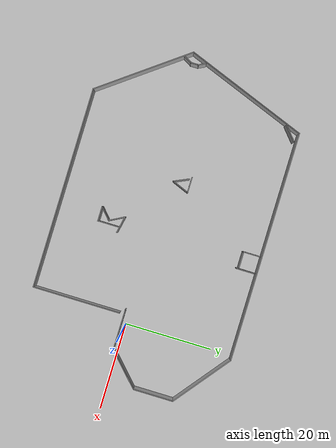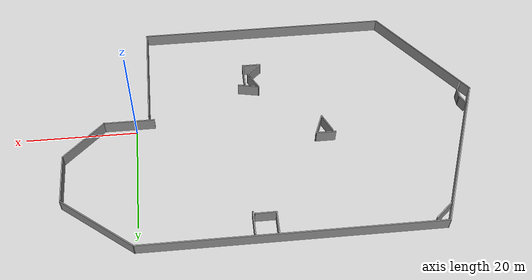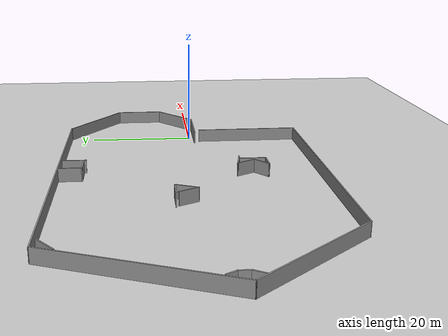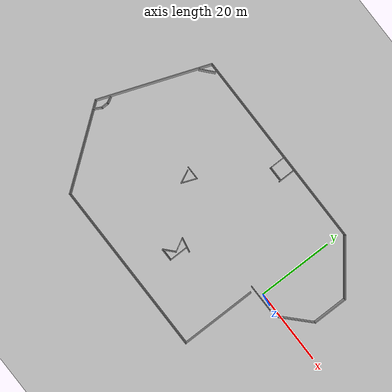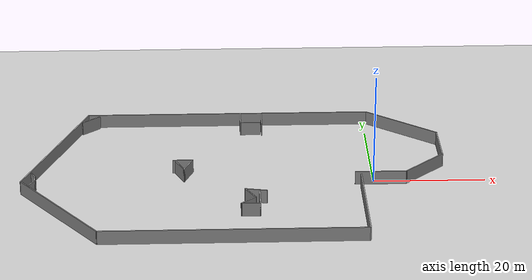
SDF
<?xml version="1.0" ?>
<sdf version="1.4">
  <world name="default">

    <!-- A global light source -->
    <include>
      <uri>model://sun</uri>
    </include>

    <!-- A ground plane -->
    <include>
      <uri>model://ground_plane</uri>
    </include>
  <include>
      <uri>model://coveragespace</uri>
    </include>

  </world>
</sdf>

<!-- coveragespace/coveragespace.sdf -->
<sdf version='1.4'>
  <model name='coveragespace'>
    <link name='Wall_0'>
      <collision name='Wall_0_Collision'>
        <geometry>
          <box>
            <size>9.23 0.2 2.5</size>
          </box>
        </geometry>
        <pose>0 0 1.25 0 -0 0</pose>
      </collision>
      <visual name='Wall_0_Visual'>
        <pose>0 0 1.25 0 -0 0</pose>
        <geometry>
          <box>
            <size>9.23 0.2 2.5</size>
          </box>
        </geometry>
        <material>
          <script>
            <uri>file://media/materials/scripts/gazebo.material</uri>
            <name>Gazebo/Grey</name>
          </script>
        </material>
      </visual>
      <velocity_decay>
        <linear>0</linear>
        <angular>0</angular>
      </velocity_decay>
      <pose>1.245 -0.93 0 0 -0 0</pose>
    </link>
    <link name='Wall_1'>
      <collision name='Wall_1_Collision'>
        <geometry>
          <box>
            <size>10.096 0.2 2.5</size>
          </box>
        </geometry>
        <pose>0 0 1.25 0 -0 0</pose>
      </collision>
      <visual name='Wall_1_Visual'>
        <pose>0 0 1.25 0 -0 0</pose>
        <geometry>
          <box>
            <size>10.096 0.2 2.5</size>
          </box>
        </geometry>
        <material>
          <script>
            <uri>file://media/materials/scripts/gazebo.material</uri>
            <name>Gazebo/Grey</name>
          </script>
        </material>
      </visual>
      <velocity_decay>
        <linear>0</linear>
        <angular>0</angular>
      </velocity_decay>
      <pose>9.34764 2.4776 0 0 -0 0.759666</pose>
    </link>
    <link name='Wall_10'>
      <collision name='Wall_10_Collision'>
        <geometry>
          <box>
            <size>3.6848 0.2 2.5</size>
          </box>
        </geometry>
        <pose>0 0 1.25 0 -0 0</pose>
      </collision>
      <visual name='Wall_10_Visual'>
        <pose>0 0 1.25 0 -0 0</pose>
        <geometry>
          <box>
            <size>3.6848 0.2 2.5</size>
          </box>
        </geometry>
        <material>
          <script>
            <uri>file://media/materials/scripts/gazebo.material</uri>
            <name>Gazebo/Grey</name>
          </script>
        </material>
      </visual>
      <velocity_decay>
        <linear>0</linear>
        <angular>0</angular>
      </velocity_decay>
      <pose>-33.9585 4.71682 0 0 -0 0</pose>
    </link>
    <link name='Wall_11'>
      <collision name='Wall_11_Collision'>
        <geometry>
          <box>
            <size>4.22134 0.2 2.5</size>
          </box>
        </geometry>
        <pose>0 0 1.25 0 -0 0</pose>
      </collision>
      <visual name='Wall_11_Visual'>
        <pose>0 0 1.25 0 -0 0</pose>
        <geometry>
          <box>
            <size>4.22134 0.2 2.5</size>
          </box>
        </geometry>
        <material>
          <script>
            <uri>file://media/materials/scripts/gazebo.material</uri>
            <name>Gazebo/Grey</name>
          </script>
        </material>
      </visual>
      <velocity_decay>
        <linear>0</linear>
        <angular>0</angular>
      </velocity_decay>
      <pose>-32.9628 2.84997 0 0 0 -1.9513</pose>
    </link>
    <link name='Wall_12'>
      <collision name='Wall_12_Collision'>
        <geometry>
          <box>
            <size>3.76391 0.2 2.5</size>
          </box>
        </geometry>
        <pose>0 0 1.25 0 -0 0</pose>
      </collision>
      <visual name='Wall_12_Visual'>
        <pose>0 0 1.25 0 -0 0</pose>
        <geometry>
          <box>
            <size>3.76391 0.2 2.5</size>
          </box>
        </geometry>
        <material>
          <script>
            <uri>file://media/materials/scripts/gazebo.material</uri>
            <name>Gazebo/Grey</name>
          </script>
        </material>
      </visual>
      <velocity_decay>
        <linear>0</linear>
        <angular>0</angular>
      </velocity_decay>
      <pose>-34.4563 2.60105 0 0 -0 2.0032</pose>
    </link>
    <link name='Wall_14'>
      <collision name='Wall_14_Collision'>
        <geometry>
          <box>
            <size>4.00766 0.2 2.5</size>
          </box>
        </geometry>
        <pose>0 0 1.25 0 -0 0</pose>
      </collision>
      <visual name='Wall_14_Visual'>
        <pose>0 0 1.25 0 -0 0</pose>
        <geometry>
          <box>
            <size>4.00766 0.2 2.5</size>
          </box>
        </geometry>
        <material>
          <script>
            <uri>file://media/materials/scripts/gazebo.material</uri>
            <name>Gazebo/Grey</name>
          </script>
        </material>
      </visual>
      <velocity_decay>
        <linear>0</linear>
        <angular>0</angular>
      </velocity_decay>
      <pose>-21.1394 -7.35553 0 0 -0 2.9442</pose>
    </link>
    <link name='Wall_15'>
      <collision name='Wall_15_Collision'>
        <geometry>
          <box>
            <size>3.87518 0.2 2.5</size>
          </box>
        </geometry>
        <pose>0 0 1.25 0 -0 0</pose>
      </collision>
      <visual name='Wall_15_Visual'>
        <pose>0 0 1.25 0 -0 0</pose>
        <geometry>
          <box>
            <size>3.87518 0.2 2.5</size>
          </box>
        </geometry>
        <material>
          <script>
            <uri>file://media/materials/scripts/gazebo.material</uri>
            <name>Gazebo/Grey</name>
          </script>
        </material>
      </visual>
      <velocity_decay>
        <linear>0</linear>
        <angular>0</angular>
      </velocity_decay>
      <pose>-22.135 -8.60011 0 0 0 -1.07685</pose>
    </link>
    <link name='Wall_16'>
      <collision name='Wall_16_Collision'>
        <geometry>
          <box>
            <size>3.5488 0.2 2.5</size>
          </box>
        </geometry>
        <pose>0 0 1.25 0 -0 0</pose>
      </collision>
      <visual name='Wall_16_Visual'>
        <pose>0 0 1.25 0 -0 0</pose>
        <geometry>
          <box>
            <size>3.5488 0.2 2.5</size>
          </box>
        </geometry>
        <material>
          <script>
            <uri>file://media/materials/scripts/gazebo.material</uri>
            <name>Gazebo/Grey</name>
          </script>
        </material>
      </visual>
      <velocity_decay>
        <linear>0</linear>
        <angular>0</angular>
      </velocity_decay>
      <pose>-22.5084 -11.3382 0 0 0 -2.40878</pose>
    </link>
    <link name='Wall_17'>
      <collision name='Wall_17_Collision'>
        <geometry>
          <box>
            <size>3.43589 0.2 2.5</size>
          </box>
        </geometry>
        <pose>0 0 1.25 0 -0 0</pose>
      </collision>
      <visual name='Wall_17_Visual'>
        <pose>0 0 1.25 0 -0 0</pose>
        <geometry>
          <box>
            <size>3.43589 0.2 2.5</size>
          </box>
        </geometry>
        <material>
          <script>
            <uri>file://media/materials/scripts/gazebo.material</uri>
            <name>Gazebo/Grey</name>
          </script>
        </material>
      </visual>
      <velocity_decay>
        <linear>0</linear>
        <angular>0</angular>
      </velocity_decay>
      <pose>-22.135 -12.4583 0 0 -0 0</pose>
    </link>
    <link name='Wall_18'>
      <collision name='Wall_18_Collision'>
        <geometry>
          <box>
            <size>4.92938 0.2 2.5</size>
          </box>
        </geometry>
        <pose>0 0 1.25 0 -0 0</pose>
      </collision>
      <visual name='Wall_18_Visual'>
        <pose>0 0 1.25 0 -0 0</pose>
        <geometry>
          <box>
            <size>4.92938 0.2 2.5</size>
          </box>
        </geometry>
        <material>
          <script>
            <uri>file://media/materials/scripts/gazebo.material</uri>
            <name>Gazebo/Grey</name>
          </script>
        </material>
      </visual>
      <velocity_decay>
        <linear>0</linear>
        <angular>0</angular>
      </velocity_decay>
      <pose>-20.5171 -10.0936 0 0 -0 1.5708</pose>
    </link>
    <link name='Wall_2'>
      <collision name='Wall_2_Collision'>
        <geometry>
          <box>
            <size>9.32444 0.2 2.5</size>
          </box>
        </geometry>
        <pose>0 0 1.25 0 -0 0</pose>
      </collision>
      <visual name='Wall_2_Visual'>
        <pose>0 0 1.25 0 -0 0</pose>
        <geometry>
          <box>
            <size>9.32444 0.2 2.5</size>
          </box>
        </geometry>
        <material>
          <script>
            <uri>file://media/materials/scripts/gazebo.material</uri>
            <name>Gazebo/Grey</name>
          </script>
        </material>
      </visual>
      <velocity_decay>
        <linear>0</linear>
        <angular>0</angular>
      </velocity_decay>
      <pose>12.9353 10.4474 0 0 -0 1.5708</pose>
    </link>
    <link name='Wall_20'>
      <collision name='Wall_20_Collision'>
        <geometry>
          <box>
            <size>4.20151 0.2 2.5</size>
          </box>
        </geometry>
        <pose>0 0 1.25 0 -0 0</pose>
      </collision>
      <visual name='Wall_20_Visual'>
        <pose>0 0 1.25 0 -0 0</pose>
        <geometry>
          <box>
            <size>4.20151 0.2 2.5</size>
          </box>
        </geometry>
        <material>
          <script>
            <uri>file://media/materials/scripts/gazebo.material</uri>
            <name>Gazebo/Grey</name>
          </script>
        </material>
      </visual>
      <velocity_decay>
        <linear>0</linear>
        <angular>0</angular>
      </velocity_decay>
      <pose>-51.3032 22.6905 0 0 0 -2.42276</pose>
    </link>
    <link name='Wall_22'>
      <collision name='Wall_22_Collision'>
        <geometry>
          <box>
            <size>1.88345 0.2 2.5</size>
          </box>
        </geometry>
        <pose>0 0 1.25 0 -0 0</pose>
      </collision>
      <visual name='Wall_22_Visual'>
        <pose>0 0 1.25 0 -0 0</pose>
        <geometry>
          <box>
            <size>1.88345 0.2 2.5</size>
          </box>
        </geometry>
        <material>
          <script>
            <uri>file://media/materials/scripts/gazebo.material</uri>
            <name>Gazebo/Grey</name>
          </script>
        </material>
      </visual>
      <velocity_decay>
        <linear>0</linear>
        <angular>0</angular>
      </velocity_decay>
      <pose>-60.3375 -0.459928 0 0 0 -1.10715</pose>
    </link>
    <link name='Wall_23'>
      <collision name='Wall_23_Collision'>
        <geometry>
          <box>
            <size>1.89394 0.2 2.5</size>
          </box>
        </geometry>
        <pose>0 0 1.25 0 -0 0</pose>
      </collision>
      <visual name='Wall_23_Visual'>
        <pose>0 0 1.25 0 -0 0</pose>
        <geometry>
          <box>
            <size>1.89394 0.2 2.5</size>
          </box>
        </geometry>
        <material>
          <script>
            <uri>file://media/materials/scripts/gazebo.material</uri>
            <name>Gazebo/Grey</name>
          </script>
        </material>
      </visual>
      <velocity_decay>
        <linear>0</linear>
        <angular>0</angular>
      </velocity_decay>
      <pose>-59.9611 -2.05976 0 0 0 -1.5708</pose>
    </link>
    <link name='Wall_24'>
      <collision name='Wall_24_Collision'>
        <geometry>
          <box>
            <size>2.13779 0.2 2.5</size>
          </box>
        </geometry>
        <pose>0 0 1.25 0 -0 0</pose>
      </collision>
      <visual name='Wall_24_Visual'>
        <pose>0 0 1.25 0 -0 0</pose>
        <geometry>
          <box>
            <size>2.13779 0.2 2.5</size>
          </box>
        </geometry>
        <material>
          <script>
            <uri>file://media/materials/scripts/gazebo.material</uri>
            <name>Gazebo/Grey</name>
          </script>
        </material>
      </visual>
      <velocity_decay>
        <linear>0</linear>
        <angular>0</angular>
      </velocity_decay>
      <pose>-60.4316 -3.75369 0 0 0 -2.07789</pose>
    </link>
    <link name='Wall_26'>
      <collision name='Wall_26_Collision'>
        <geometry>
          <box>
            <size>4.34073 0.2 2.5</size>
          </box>
        </geometry>
        <pose>0 0 1.25 0 -0 0</pose>
      </collision>
      <visual name='Wall_26_Visual'>
        <pose>0 0 1.25 0 -0 0</pose>
        <geometry>
          <box>
            <size>4.34073 0.2 2.5</size>
          </box>
        </geometry>
        <material>
          <script>
            <uri>file://media/materials/scripts/gazebo.material</uri>
            <name>Gazebo/Grey</name>
          </script>
        </material>
      </visual>
      <velocity_decay>
        <linear>0</linear>
        <angular>0</angular>
      </velocity_decay>
      <pose>-23.2591 22.5023 0 0 0 -1.5708</pose>
    </link>
    <link name='Wall_27'>
      <collision name='Wall_27_Collision'>
        <geometry>
          <box>
            <size>3.77609 0.2 2.5</size>
          </box>
        </geometry>
        <pose>0 0 1.25 0 -0 0</pose>
      </collision>
      <visual name='Wall_27_Visual'>
        <pose>0 0 1.25 0 -0 0</pose>
        <geometry>
          <box>
            <size>3.77609 0.2 2.5</size>
          </box>
        </geometry>
        <material>
          <script>
            <uri>file://media/materials/scripts/gazebo.material</uri>
            <name>Gazebo/Grey</name>
          </script>
        </material>
      </visual>
      <velocity_decay>
        <linear>0</linear>
        <angular>0</angular>
      </velocity_decay>
      <pose>-21.4711 20.432 0 0 -0 0</pose>
    </link>
    <link name='Wall_3'>
      <collision name='Wall_3_Collision'>
        <geometry>
          <box>
            <size>15.8112 0.2 2.5</size>
          </box>
        </geometry>
        <pose>0 0 1.25 0 -0 0</pose>
      </collision>
      <visual name='Wall_3_Visual'>
        <pose>0 0 1.25 0 -0 0</pose>
        <geometry>
          <box>
            <size>15.8112 0.2 2.5</size>
          </box>
        </geometry>
        <material>
          <script>
            <uri>file://media/materials/scripts/gazebo.material</uri>
            <name>Gazebo/Grey</name>
          </script>
        </material>
      </visual>
      <velocity_decay>
        <linear>0</linear>
        <angular>0</angular>
      </velocity_decay>
      <pose>6.78796 19.8198 0 0 -0 2.47762</pose>
    </link>
    <link name='Wall_30'>
      <collision name='Wall_30_Collision'>
        <geometry>
          <box>
            <size>4.34073 0.2 2.5</size>
          </box>
        </geometry>
        <pose>0 0 1.25 0 -0 0</pose>
      </collision>
      <visual name='Wall_30_Visual'>
        <pose>0 0 1.25 0 -0 0</pose>
        <geometry>
          <box>
            <size>4.34073 0.2 2.5</size>
          </box>
        </geometry>
        <material>
          <script>
            <uri>file://media/materials/scripts/gazebo.material</uri>
            <name>Gazebo/Grey</name>
          </script>
        </material>
      </visual>
      <velocity_decay>
        <linear>0</linear>
        <angular>0</angular>
      </velocity_decay>
      <pose>-19.3066 22.1259 0 0 -0 1.5708</pose>
    </link>
    <link name='Wall_4'>
      <collision name='Wall_4_Collision'>
        <geometry>
          <box>
            <size>52.721 0.2 2.5</size>
          </box>
        </geometry>
        <pose>0 0 1.25 0 -0 0</pose>
      </collision>
      <visual name='Wall_4_Visual'>
        <pose>0 0 1.25 0 -0 0</pose>
        <geometry>
          <box>
            <size>52.721 0.2 2.5</size>
          </box>
        </geometry>
        <material>
          <script>
            <uri>file://media/materials/scripts/gazebo.material</uri>
            <name>Gazebo/Grey</name>
          </script>
        </material>
      </visual>
      <velocity_decay>
        <linear>0</linear>
        <angular>0</angular>
      </velocity_decay>
      <pose>-25.6198 24.63 0 0 -0 3.14159</pose>
    </link>
    <link name='Wall_5'>
      <collision name='Wall_5_Collision'>
        <geometry>
          <box>
            <size>29.7412 0.2 2.5</size>
          </box>
        </geometry>
        <pose>0 0 1.25 0 -0 0</pose>
      </collision>
      <visual name='Wall_5_Visual'>
        <pose>0 0 1.25 0 -0 0</pose>
        <geometry>
          <box>
            <size>29.7412 0.2 2.5</size>
          </box>
        </geometry>
        <material>
          <script>
            <uri>file://media/materials/scripts/gazebo.material</uri>
            <name>Gazebo/Grey</name>
          </script>
        </material>
      </visual>
      <velocity_decay>
        <linear>0</linear>
        <angular>0</angular>
      </velocity_decay>
      <pose>-57.1075 10.8152 0 0 0 -1.93253</pose>
    </link>
    <link name='Wall_6'>
      <collision name='Wall_6_Collision'>
        <geometry>
          <box>
            <size>23.8469 0.2 2.5</size>
          </box>
        </geometry>
        <pose>0 0 1.25 0 -0 0</pose>
      </collision>
      <visual name='Wall_6_Visual'>
        <pose>0 0 1.25 0 -0 0</pose>
        <geometry>
          <box>
            <size>23.8469 0.2 2.5</size>
          </box>
        </geometry>
        <material>
          <script>
            <uri>file://media/materials/scripts/gazebo.material</uri>
            <name>Gazebo/Grey</name>
          </script>
        </material>
      </visual>
      <velocity_decay>
        <linear>0</linear>
        <angular>0</angular>
      </velocity_decay>
      <pose>-55.2407 -12.4583 0 0 0 -0.927295</pose>
    </link>
    <link name='Wall_7'>
      <collision name='Wall_7_Collision'>
        <geometry>
          <box>
            <size>46.0003 0.2 2.5</size>
          </box>
        </geometry>
        <pose>0 0 1.25 0 -0 0</pose>
      </collision>
      <visual name='Wall_7_Visual'>
        <pose>0 0 1.25 0 -0 0</pose>
        <geometry>
          <box>
            <size>46.0003 0.2 2.5</size>
          </box>
        </geometry>
        <material>
          <script>
            <uri>file://media/materials/scripts/gazebo.material</uri>
            <name>Gazebo/Grey</name>
          </script>
        </material>
      </visual>
      <velocity_decay>
        <linear>0</linear>
        <angular>0</angular>
      </velocity_decay>
      <pose>-25.2465 -21.917 0 0 -0 0</pose>
    </link>
    <link name='Wall_8'>
      <collision name='Wall_8_Collision'>
        <geometry>
          <box>
            <size>20.1132 0.2 2.5</size>
          </box>
        </geometry>
        <pose>0 0 1.25 0 -0 0</pose>
      </collision>
      <visual name='Wall_8_Visual'>
        <pose>0 0 1.25 0 -0 0</pose>
        <geometry>
          <box>
            <size>20.1132 0.2 2.5</size>
          </box>
        </geometry>
        <material>
          <script>
            <uri>file://media/materials/scripts/gazebo.material</uri>
            <name>Gazebo/Grey</name>
          </script>
        </material>
      </visual>
      <velocity_decay>
        <linear>0</linear>
        <angular>0</angular>
      </velocity_decay>
      <pose>-2.34633 -11.9605 0 0 -0 1.5708</pose>
    </link>
    <static>1</static>
  </model>
</sdf>
